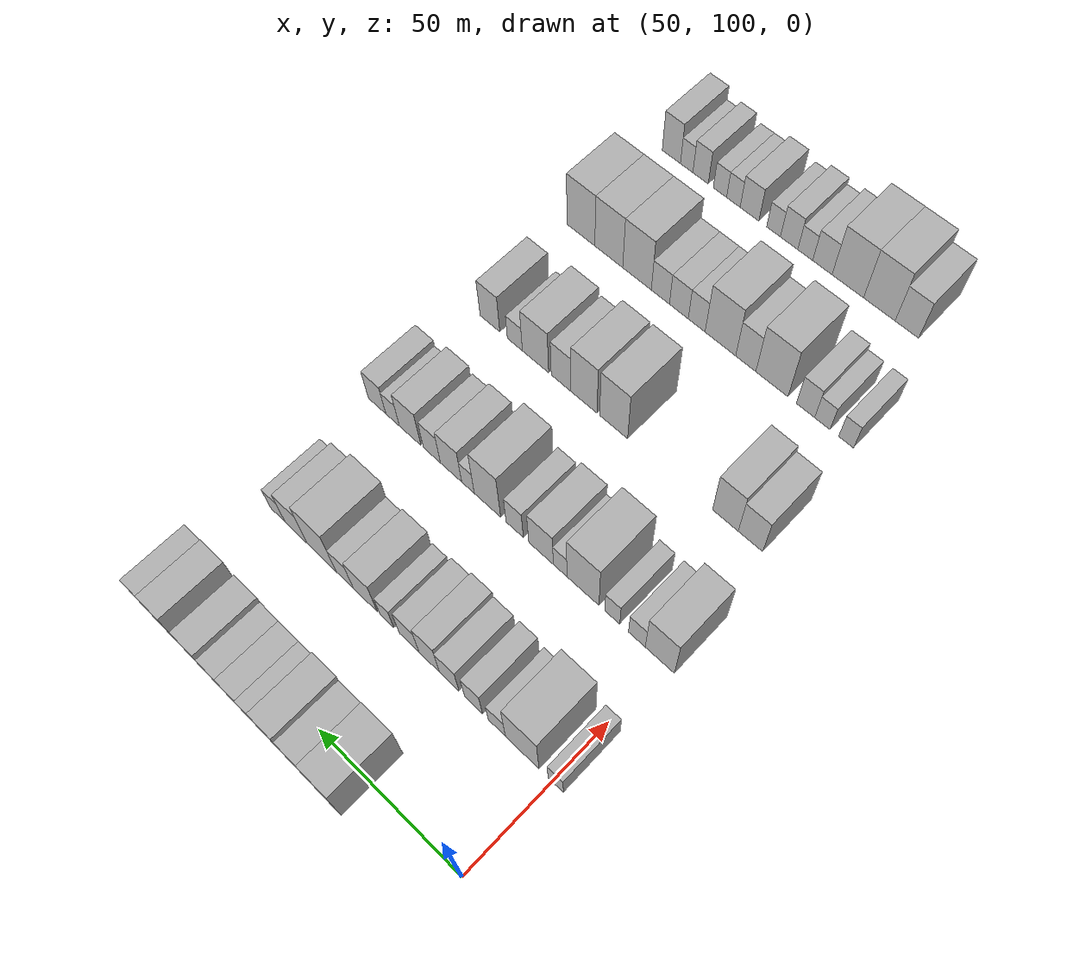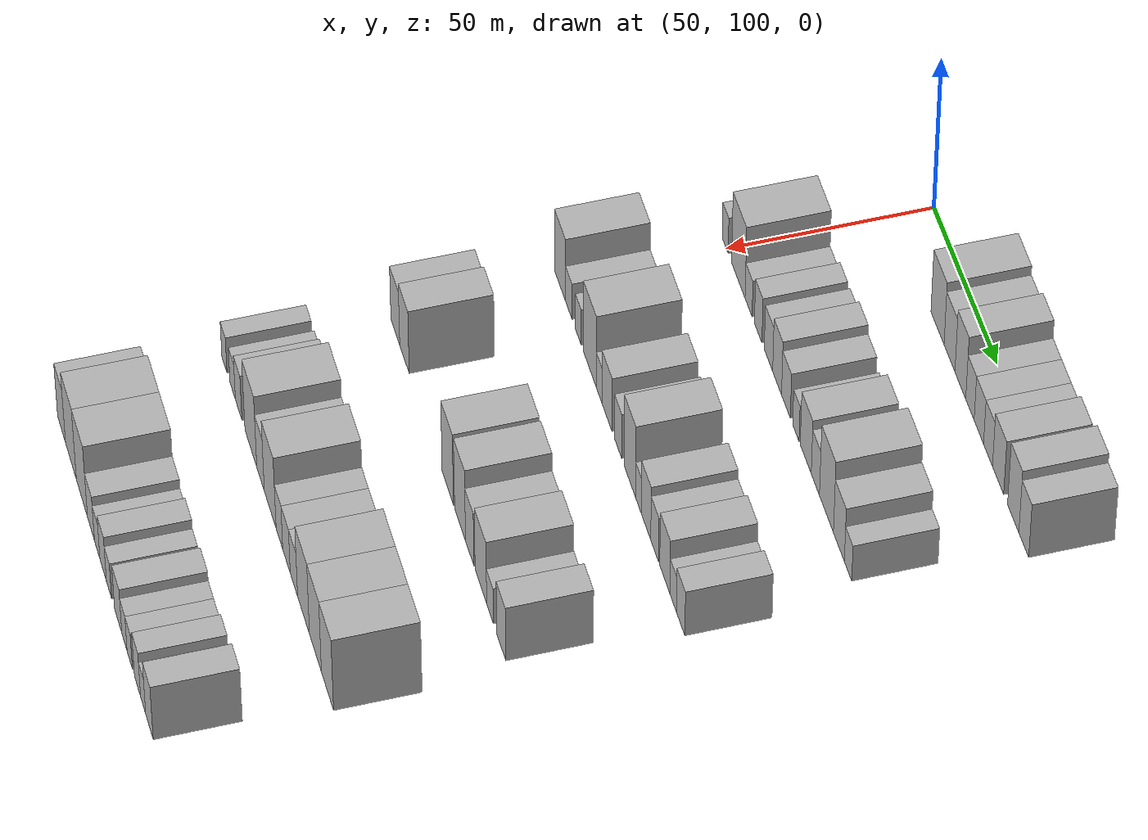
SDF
<sdf version="1.6">
 <world name="default">
  <model name="building_81">
   <static>1</static>
   <pose>50.0000 135.9728 0 0.000000 0.000000 0.000000</pose>
   <link name="link">
    <pose>0 0 10.50 0 0 0</pose>
    <collision name="collision"><geometry><box><size>20.0000 10.4667 21.0000</size></box></geometry></collision>
    <visual name="visual">
     <cast_shadows>0</cast_shadows>
     <geometry><box><size>20.0000 10.4667 21.0000</size></box></geometry>
     <material>
      <script>
       <uri>model://HANNAS_wall/materials/scripts</uri>
       <uri>model://HANNAS_wall/materials/textures</uri>
       <name>vrc/HANNAS_wall</name>
      </script>
     </material>
    </visual>
   </link>
  </model>
  <model name="building_82">
   <static>1</static>
   <pose>50.0000 145.5064 0 0.000000 0.000000 0.000000</pose>
   <link name="link">
    <pose>0 0 9.00 0 0 0</pose>
    <collision name="collision"><geometry><box><size>20.0000 8.6006 18.0000</size></box></geometry></collision>
    <visual name="visual">
     <cast_shadows>0</cast_shadows>
     <geometry><box><size>20.0000 8.6006 18.0000</size></box></geometry>
     <material>
      <script>
       <uri>model://HANNAS_wall/materials/scripts</uri>
       <uri>model://HANNAS_wall/materials/textures</uri>
       <name>vrc/HANNAS_wall</name>
      </script>
     </material>
    </visual>
   </link>
  </model>
  <model name="building_83">
   <static>1</static>
   <pose>50.0000 154.0730 0 0.000000 0.000000 0.000000</pose>
   <link name="link">
    <pose>0 0 10.50 0 0 0</pose>
    <collision name="collision"><geometry><box><size>20.0000 8.5325 21.0000</size></box></geometry></collision>
    <visual name="visual">
     <cast_shadows>0</cast_shadows>
     <geometry><box><size>20.0000 8.5325 21.0000</size></box></geometry>
     <material>
      <script>
       <uri>model://HANNAS_wall/materials/scripts</uri>
       <uri>model://HANNAS_wall/materials/textures</uri>
       <name>vrc/HANNAS_wall</name>
      </script>
     </material>
    </visual>
   </link>
  </model>
  <model name="building_84">
   <static>1</static>
   <pose>50.0000 161.6211 0 0.000000 0.000000 0.000000</pose>
   <link name="link">
    <pose>0 0 7.50 0 0 0</pose>
    <collision name="collision"><geometry><box><size>20.0000 6.5638 15.0000</size></box></geometry></collision>
    <visual name="visual">
     <cast_shadows>0</cast_shadows>
     <geometry><box><size>20.0000 6.5638 15.0000</size></box></geometry>
     <material>
      <script>
       <uri>model://HANNAS_wall/materials/scripts</uri>
       <uri>model://HANNAS_wall/materials/textures</uri>
       <name>vrc/HANNAS_wall</name>
      </script>
     </material>
    </visual>
   </link>
  </model>
  <model name="building_85">
   <static>1</static>
   <pose>50.0000 168.5790 0 0.000000 0.000000 0.000000</pose>
   <link name="link">
    <pose>0 0 7.50 0 0 0</pose>
    <collision name="collision"><geometry><box><size>20.0000 7.3518 15.0000</size></box></geometry></collision>
    <visual name="visual">
     <cast_shadows>0</cast_shadows>
     <geometry><box><size>20.0000 7.3518 15.0000</size></box></geometry>
     <material>
      <script>
       <uri>model://HANNAS_wall/materials/scripts</uri>
       <uri>model://HANNAS_wall/materials/textures</uri>
       <name>vrc/HANNAS_wall</name>
      </script>
     </material>
    </visual>
   </link>
  </model>
  <model name="building_86">
   <static>1</static>
   <pose>50.0000 175.7212 0 0.000000 0.000000 0.000000</pose>
   <link name="link">
    <pose>0 0 7.50 0 0 0</pose>
    <collision name="collision"><geometry><box><size>20.0000 6.9327 15.0000</size></box></geometry></collision>
    <visual name="visual">
     <cast_shadows>0</cast_shadows>
     <geometry><box><size>20.0000 6.9327 15.0000</size></box></geometry>
     <material>
      <script>
       <uri>model://HANNAS_wall/materials/scripts</uri>
       <uri>model://HANNAS_wall/materials/textures</uri>
       <name>vrc/HANNAS_wall</name>
      </script>
     </material>
    </visual>
   </link>
  </model>
  <model name="building_87">
   <static>1</static>
   <pose>50.0000 183.4900 0 0.000000 0.000000 0.000000</pose>
   <link name="link">
    <pose>0 0 9.00 0 0 0</pose>
    <collision name="collision"><geometry><box><size>20.0000 8.6049 18.0000</size></box></geometry></collision>
    <visual name="visual">
     <cast_shadows>0</cast_shadows>
     <geometry><box><size>20.0000 8.6049 18.0000</size></box></geometry>
     <material>
      <script>
       <uri>model://HANNAS_wall/materials/scripts</uri>
       <uri>model://HANNAS_wall/materials/textures</uri>
       <name>vrc/HANNAS_wall</name>
      </script>
     </material>
    </visual>
   </link>
  </model>
  <model name="building_88">
   <static>1</static>
   <pose>50.0000 195.1148 0 0.000000 0.000000 0.000000</pose>
   <link name="link">
    <pose>0 0 10.50 0 0 0</pose>
    <collision name="collision"><geometry><box><size>20.0000 8.6447 21.0000</size></box></geometry></collision>
    <visual name="visual">
     <cast_shadows>0</cast_shadows>
     <geometry><box><size>20.0000 8.6447 21.0000</size></box></geometry>
     <material>
      <script>
       <uri>model://HANNAS_wall/materials/scripts</uri>
       <uri>model://HANNAS_wall/materials/textures</uri>
       <name>vrc/HANNAS_wall</name>
      </script>
     </material>
    </visual>
   </link>
  </model>
  <model name="building_89">
   <static>1</static>
   <pose>50.0000 203.1701 0 0.000000 0.000000 0.000000</pose>
   <link name="link">
    <pose>0 0 9.00 0 0 0</pose>
    <collision name="collision"><geometry><box><size>20.0000 7.4660 18.0000</size></box></geometry></collision>
    <visual name="visual">
     <cast_shadows>0</cast_shadows>
     <geometry><box><size>20.0000 7.4660 18.0000</size></box></geometry>
     <material>
      <script>
       <uri>model://HANNAS_wall/materials/scripts</uri>
       <uri>model://HANNAS_wall/materials/textures</uri>
       <name>vrc/HANNAS_wall</name>
      </script>
     </material>
    </visual>
   </link>
  </model>
  <model name="building_217">
   <static>1</static>
   <pose>90.0000 98.8861 0 0.000000 0.000000 0.000000</pose>
   <link name="link">
    <pose>0 0 6.00 0 0 0</pose>
    <collision name="collision"><geometry><box><size>20.0000 5.0684 12.0000</size></box></geometry></collision>
    <visual name="visual">
     <cast_shadows>0</cast_shadows>
     <geometry><box><size>20.0000 5.0684 12.0000</size></box></geometry>
     <material>
      <script>
       <uri>model://HANNAS_wall/materials/scripts</uri>
       <uri>model://HANNAS_wall/materials/textures</uri>
       <name>vrc/HANNAS_wall</name>
      </script>
     </material>
    </visual>
   </link>
  </model>
  <model name="building_218">
   <static>1</static>
   <pose>90.0000 110.1168 0 0.000000 0.000000 0.000000</pose>
   <link name="link">
    <pose>0 0 12.00 0 0 0</pose>
    <collision name="collision"><geometry><box><size>20.0000 11.3928 24.0000</size></box></geometry></collision>
    <visual name="visual">
     <cast_shadows>0</cast_shadows>
     <geometry><box><size>20.0000 11.3928 24.0000</size></box></geometry>
     <material>
      <script>
       <uri>model://HANNAS_wall/materials/scripts</uri>
       <uri>model://HANNAS_wall/materials/textures</uri>
       <name>vrc/HANNAS_wall</name>
      </script>
     </material>
    </visual>
   </link>
  </model>
  <model name="building_219">
   <static>1</static>
   <pose>90.0000 118.7729 0 0.000000 0.000000 0.000000</pose>
   <link name="link">
    <pose>0 0 6.00 0 0 0</pose>
    <collision name="collision"><geometry><box><size>20.0000 5.9195 12.0000</size></box></geometry></collision>
    <visual name="visual">
     <cast_shadows>0</cast_shadows>
     <geometry><box><size>20.0000 5.9195 12.0000</size></box></geometry>
     <material>
      <script>
       <uri>model://HANNAS_wall/materials/scripts</uri>
       <uri>model://HANNAS_wall/materials/textures</uri>
       <name>vrc/HANNAS_wall</name>
      </script>
     </material>
    </visual>
   </link>
  </model>
  <model name="building_220">
   <static>1</static>
   <pose>90.0000 126.8644 0 0.000000 0.000000 0.000000</pose>
   <link name="link">
    <pose>0 0 7.50 0 0 0</pose>
    <collision name="collision"><geometry><box><size>20.0000 6.2635 15.0000</size></box></geometry></collision>
    <visual name="visual">
     <cast_shadows>0</cast_shadows>
     <geometry><box><size>20.0000 6.2635 15.0000</size></box></geometry>
     <material>
      <script>
       <uri>model://HANNAS_wall/materials/scripts</uri>
       <uri>model://HANNAS_wall/materials/textures</uri>
       <name>vrc/HANNAS_wall</name>
      </script>
     </material>
    </visual>
   </link>
  </model>
  <model name="building_221">
   <static>1</static>
   <pose>90.0000 135.4966 0 0.000000 0.000000 0.000000</pose>
   <link name="link">
    <pose>0 0 7.50 0 0 0</pose>
    <collision name="collision"><geometry><box><size>20.0000 7.0009 15.0000</size></box></geometry></collision>
    <visual name="visual">
     <cast_shadows>0</cast_shadows>
     <geometry><box><size>20.0000 7.0009 15.0000</size></box></geometry>
     <material>
      <script>
       <uri>model://HANNAS_wall/materials/scripts</uri>
       <uri>model://HANNAS_wall/materials/textures</uri>
       <name>vrc/HANNAS_wall</name>
      </script>
     </material>
    </visual>
   </link>
  </model>
  <model name="building_222">
   <static>1</static>
   <pose>90.0000 142.6741 0 0.000000 0.000000 0.000000</pose>
   <link name="link">
    <pose>0 0 9.00 0 0 0</pose>
    <collision name="collision"><geometry><box><size>20.0000 7.3541 18.0000</size></box></geometry></collision>
    <visual name="visual">
     <cast_shadows>0</cast_shadows>
     <geometry><box><size>20.0000 7.3541 18.0000</size></box></geometry>
     <material>
      <script>
       <uri>model://HANNAS_wall/materials/scripts</uri>
       <uri>model://HANNAS_wall/materials/textures</uri>
       <name>vrc/HANNAS_wall</name>
      </script>
     </material>
    </visual>
   </link>
  </model>
  <model name="building_223">
   <static>1</static>
   <pose>90.0000 149.9775 0 0.000000 0.000000 0.000000</pose>
   <link name="link">
    <pose>0 0 7.50 0 0 0</pose>
    <collision name="collision"><geometry><box><size>20.0000 7.2528 15.0000</size></box></geometry></collision>
    <visual name="visual">
     <cast_shadows>0</cast_shadows>
     <geometry><box><size>20.0000 7.2528 15.0000</size></box></geometry>
     <material>
      <script>
       <uri>model://HANNAS_wall/materials/scripts</uri>
       <uri>model://HANNAS_wall/materials/textures</uri>
       <name>vrc/HANNAS_wall</name>
      </script>
     </material>
    </visual>
   </link>
  </model>
  <model name="building_224">
   <static>1</static>
   <pose>90.0000 158.1889 0 0.000000 0.000000 0.000000</pose>
   <link name="link">
    <pose>0 0 6.00 0 0 0</pose>
    <collision name="collision"><geometry><box><size>20.0000 5.1699 12.0000</size></box></geometry></collision>
    <visual name="visual">
     <cast_shadows>0</cast_shadows>
     <geometry><box><size>20.0000 5.1699 12.0000</size></box></geometry>
     <material>
      <script>
       <uri>model://HANNAS_wall/materials/scripts</uri>
       <uri>model://HANNAS_wall/materials/textures</uri>
       <name>vrc/HANNAS_wall</name>
      </script>
     </material>
    </visual>
   </link>
  </model>
  <model name="building_225">
   <static>1</static>
   <pose>90.0000 166.2722 0 0.000000 0.000000 0.000000</pose>
   <link name="link">
    <pose>0 0 9.00 0 0 0</pose>
    <collision name="collision"><geometry><box><size>20.0000 8.9967 18.0000</size></box></geometry></collision>
    <visual name="visual">
     <cast_shadows>0</cast_shadows>
     <geometry><box><size>20.0000 8.9967 18.0000</size></box></geometry>
     <material>
      <script>
       <uri>model://HANNAS_wall/materials/scripts</uri>
       <uri>model://HANNAS_wall/materials/textures</uri>
       <name>vrc/HANNAS_wall</name>
      </script>
     </material>
    </visual>
   </link>
  </model>
  <model name="building_226">
   <static>1</static>
   <pose>90.0000 174.0977 0 0.000000 0.000000 0.000000</pose>
   <link name="link">
    <pose>0 0 7.50 0 0 0</pose>
    <collision name="collision"><geometry><box><size>20.0000 6.6544 15.0000</size></box></geometry></collision>
    <visual name="visual">
     <cast_shadows>0</cast_shadows>
     <geometry><box><size>20.0000 6.6544 15.0000</size></box></geometry>
     <material>
      <script>
       <uri>model://HANNAS_wall/materials/scripts</uri>
       <uri>model://HANNAS_wall/materials/textures</uri>
       <name>vrc/HANNAS_wall</name>
      </script>
     </material>
    </visual>
   </link>
  </model>
  <model name="building_227">
   <static>1</static>
   <pose>90.0000 183.0650 0 0.000000 0.000000 0.000000</pose>
   <link name="link">
    <pose>0 0 12.00 0 0 0</pose>
    <collision name="collision"><geometry><box><size>20.0000 11.2802 24.0000</size></box></geometry></collision>
    <visual name="visual">
     <cast_shadows>0</cast_shadows>
     <geometry><box><size>20.0000 11.2802 24.0000</size></box></geometry>
     <material>
      <script>
       <uri>model://HANNAS_wall/materials/scripts</uri>
       <uri>model://HANNAS_wall/materials/textures</uri>
       <name>vrc/HANNAS_wall</name>
      </script>
     </material>
    </visual>
   </link>
  </model>
  <model name="building_228">
   <static>1</static>
   <pose>90.0000 193.0836 0 0.000000 0.000000 0.000000</pose>
   <link name="link">
    <pose>0 0 9.00 0 0 0</pose>
    <collision name="collision"><geometry><box><size>20.0000 8.7570 18.0000</size></box></geometry></collision>
    <visual name="visual">
     <cast_shadows>0</cast_shadows>
     <geometry><box><size>20.0000 8.7570 18.0000</size></box></geometry>
     <material>
      <script>
       <uri>model://HANNAS_wall/materials/scripts</uri>
       <uri>model://HANNAS_wall/materials/textures</uri>
       <name>vrc/HANNAS_wall</name>
      </script>
     </material>
    </visual>
   </link>
  </model>
  <model name="building_229">
   <static>1</static>
   <pose>90.0000 200.3933 0 0.000000 0.000000 0.000000</pose>
   <link name="link">
    <pose>0 0 6.00 0 0 0</pose>
    <collision name="collision"><geometry><box><size>20.0000 5.8623 12.0000</size></box></geometry></collision>
    <visual name="visual">
     <cast_shadows>0</cast_shadows>
     <geometry><box><size>20.0000 5.8623 12.0000</size></box></geometry>
     <material>
      <script>
       <uri>model://HANNAS_wall/materials/scripts</uri>
       <uri>model://HANNAS_wall/materials/textures</uri>
       <name>vrc/HANNAS_wall</name>
      </script>
     </material>
    </visual>
   </link>
  </model>
  <model name="building_353">
   <static>1</static>
   <pose>130.0000 101.2650 0 0.000000 0.000000 0.000000</pose>
   <link name="link">
    <pose>0 0 10.50 0 0 0</pose>
    <collision name="collision"><geometry><box><size>20.0000 9.7929 21.0000</size></box></geometry></collision>
    <visual name="visual">
     <cast_shadows>0</cast_shadows>
     <geometry><box><size>20.0000 9.7929 21.0000</size></box></geometry>
     <material>
      <script>
       <uri>model://HANNAS_wall/materials/scripts</uri>
       <uri>model://HANNAS_wall/materials/textures</uri>
       <name>vrc/HANNAS_wall</name>
      </script>
     </material>
    </visual>
   </link>
  </model>
  <model name="building_354">
   <static>1</static>
   <pose>130.0000 109.0192 0 0.000000 0.000000 0.000000</pose>
   <link name="link">
    <pose>0 0 6.00 0 0 0</pose>
    <collision name="collision"><geometry><box><size>20.0000 5.7154 12.0000</size></box></geometry></collision>
    <visual name="visual">
     <cast_shadows>0</cast_shadows>
     <geometry><box><size>20.0000 5.7154 12.0000</size></box></geometry>
     <material>
      <script>
       <uri>model://HANNAS_wall/materials/scripts</uri>
       <uri>model://HANNAS_wall/materials/textures</uri>
       <name>vrc/HANNAS_wall</name>
      </script>
     </material>
    </visual>
   </link>
  </model>
  <model name="building_355">
   <static>1</static>
   <pose>130.0000 117.4664 0 0.000000 0.000000 0.000000</pose>
   <link name="link">
    <pose>0 0 6.00 0 0 0</pose>
    <collision name="collision"><geometry><box><size>20.0000 5.1791 12.0000</size></box></geometry></collision>
    <visual name="visual">
     <cast_shadows>0</cast_shadows>
     <geometry><box><size>20.0000 5.1791 12.0000</size></box></geometry>
     <material>
      <script>
       <uri>model://HANNAS_wall/materials/scripts</uri>
       <uri>model://HANNAS_wall/materials/textures</uri>
       <name>vrc/HANNAS_wall</name>
      </script>
     </material>
    </visual>
   </link>
  </model>
  <model name="building_356">
   <static>1</static>
   <pose>130.0000 127.6938 0 0.000000 0.000000 0.000000</pose>
   <link name="link">
    <pose>0 0 12.00 0 0 0</pose>
    <collision name="collision"><geometry><box><size>20.0000 11.2758 24.0000</size></box></geometry></collision>
    <visual name="visual">
     <cast_shadows>0</cast_shadows>
     <geometry><box><size>20.0000 11.2758 24.0000</size></box></geometry>
     <material>
      <script>
       <uri>model://HANNAS_wall/materials/scripts</uri>
       <uri>model://HANNAS_wall/materials/textures</uri>
       <name>vrc/HANNAS_wall</name>
      </script>
     </material>
    </visual>
   </link>
  </model>
  <model name="building_357">
   <static>1</static>
   <pose>130.0000 135.7639 0 0.000000 0.000000 0.000000</pose>
   <link name="link">
    <pose>0 0 6.00 0 0 0</pose>
    <collision name="collision"><geometry><box><size>20.0000 4.8643 12.0000</size></box></geometry></collision>
    <visual name="visual">
     <cast_shadows>0</cast_shadows>
     <geometry><box><size>20.0000 4.8643 12.0000</size></box></geometry>
     <material>
      <script>
       <uri>model://HANNAS_wall/materials/scripts</uri>
       <uri>model://HANNAS_wall/materials/textures</uri>
       <name>vrc/HANNAS_wall</name>
      </script>
     </material>
    </visual>
   </link>
  </model>
  <model name="building_358">
   <static>1</static>
   <pose>130.0000 142.6351 0 0.000000 0.000000 0.000000</pose>
   <link name="link">
    <pose>0 0 9.00 0 0 0</pose>
    <collision name="collision"><geometry><box><size>20.0000 8.8780 18.0000</size></box></geometry></collision>
    <visual name="visual">
     <cast_shadows>0</cast_shadows>
     <geometry><box><size>20.0000 8.8780 18.0000</size></box></geometry>
     <material>
      <script>
       <uri>model://HANNAS_wall/materials/scripts</uri>
       <uri>model://HANNAS_wall/materials/textures</uri>
       <name>vrc/HANNAS_wall</name>
      </script>
     </material>
    </visual>
   </link>
  </model>
  <model name="building_359">
   <static>1</static>
   <pose>130.0000 152.2548 0 0.000000 0.000000 0.000000</pose>
   <link name="link">
    <pose>0 0 7.50 0 0 0</pose>
    <collision name="collision"><geometry><box><size>20.0000 6.3614 15.0000</size></box></geometry></collision>
    <visual name="visual">
     <cast_shadows>0</cast_shadows>
     <geometry><box><size>20.0000 6.3614 15.0000</size></box></geometry>
     <material>
      <script>
       <uri>model://HANNAS_wall/materials/scripts</uri>
       <uri>model://HANNAS_wall/materials/textures</uri>
       <name>vrc/HANNAS_wall</name>
      </script>
     </material>
    </visual>
   </link>
  </model>
  <model name="building_360">
   <static>1</static>
   <pose>130.0000 162.3799 0 0.000000 0.000000 0.000000</pose>
   <link name="link">
    <pose>0 0 12.00 0 0 0</pose>
    <collision name="collision"><geometry><box><size>20.0000 9.8888 24.0000</size></box></geometry></collision>
    <visual name="visual">
     <cast_shadows>0</cast_shadows>
     <geometry><box><size>20.0000 9.8888 24.0000</size></box></geometry>
     <material>
      <script>
       <uri>model://HANNAS_wall/materials/scripts</uri>
       <uri>model://HANNAS_wall/materials/textures</uri>
       <name>vrc/HANNAS_wall</name>
      </script>
     </material>
    </visual>
   </link>
  </model>
  <model name="building_361">
   <static>1</static>
   <pose>130.0000 169.7253 0 0.000000 0.000000 0.000000</pose>
   <link name="link">
    <pose>0 0 6.00 0 0 0</pose>
    <collision name="collision"><geometry><box><size>20.0000 4.8021 12.0000</size></box></geometry></collision>
    <visual name="visual">
     <cast_shadows>0</cast_shadows>
     <geometry><box><size>20.0000 4.8021 12.0000</size></box></geometry>
     <material>
      <script>
       <uri>model://HANNAS_wall/materials/scripts</uri>
       <uri>model://HANNAS_wall/materials/textures</uri>
       <name>vrc/HANNAS_wall</name>
      </script>
     </material>
    </visual>
   </link>
  </model>
  <model name="building_362">
   <static>1</static>
   <pose>130.0000 176.2233 0 0.000000 0.000000 0.000000</pose>
   <link name="link">
    <pose>0 0 9.00 0 0 0</pose>
    <collision name="collision"><geometry><box><size>20.0000 8.1939 18.0000</size></box></geometry></collision>
    <visual name="visual">
     <cast_shadows>0</cast_shadows>
     <geometry><box><size>20.0000 8.1939 18.0000</size></box></geometry>
     <material>
      <script>
       <uri>model://HANNAS_wall/materials/scripts</uri>
       <uri>model://HANNAS_wall/materials/textures</uri>
       <name>vrc/HANNAS_wall</name>
      </script>
     </material>
    </visual>
   </link>
  </model>
  <model name="building_363">
   <static>1</static>
   <pose>130.0000 183.6289 0 0.000000 0.000000 0.000000</pose>
   <link name="link">
    <pose>0 0 7.50 0 0 0</pose>
    <collision name="collision"><geometry><box><size>20.0000 6.6175 15.0000</size></box></geometry></collision>
    <visual name="visual">
     <cast_shadows>0</cast_shadows>
     <geometry><box><size>20.0000 6.6175 15.0000</size></box></geometry>
     <material>
      <script>
       <uri>model://HANNAS_wall/materials/scripts</uri>
       <uri>model://HANNAS_wall/materials/textures</uri>
       <name>vrc/HANNAS_wall</name>
      </script>
     </material>
    </visual>
   </link>
  </model>
  <model name="building_364">
   <static>1</static>
   <pose>130.0000 192.2045 0 0.000000 0.000000 0.000000</pose>
   <link name="link">
    <pose>0 0 9.00 0 0 0</pose>
    <collision name="collision"><geometry><box><size>20.0000 8.5337 18.0000</size></box></geometry></collision>
    <visual name="visual">
     <cast_shadows>0</cast_shadows>
     <geometry><box><size>20.0000 8.5337 18.0000</size></box></geometry>
     <material>
      <script>
       <uri>model://HANNAS_wall/materials/scripts</uri>
       <uri>model://HANNAS_wall/materials/textures</uri>
       <name>vrc/HANNAS_wall</name>
      </script>
     </material>
    </visual>
   </link>
  </model>
  <model name="building_365">
   <static>1</static>
   <pose>130.0000 199.1846 0 0.000000 0.000000 0.000000</pose>
   <link name="link">
    <pose>0 0 6.00 0 0 0</pose>
    <collision name="collision"><geometry><box><size>20.0000 5.4264 12.0000</size></box></geometry></collision>
    <visual name="visual">
     <cast_shadows>0</cast_shadows>
     <geometry><box><size>20.0000 5.4264 12.0000</size></box></geometry>
     <material>
      <script>
       <uri>model://HANNAS_wall/materials/scripts</uri>
       <uri>model://HANNAS_wall/materials/textures</uri>
       <name>vrc/HANNAS_wall</name>
      </script>
     </material>
    </visual>
   </link>
  </model>
  <model name="building_366">
   <static>1</static>
   <pose>130.0000 205.4312 0 0.000000 0.000000 0.000000</pose>
   <link name="link">
    <pose>0 0 7.50 0 0 0</pose>
    <collision name="collision"><geometry><box><size>20.0000 7.0668 15.0000</size></box></geometry></collision>
    <visual name="visual">
     <cast_shadows>0</cast_shadows>
     <geometry><box><size>20.0000 7.0668 15.0000</size></box></geometry>
     <material>
      <script>
       <uri>model://HANNAS_wall/materials/scripts</uri>
       <uri>model://HANNAS_wall/materials/textures</uri>
       <name>vrc/HANNAS_wall</name>
      </script>
     </material>
    </visual>
   </link>
  </model>
  <model name="building_494">
   <static>1</static>
   <pose>170.0000 105.2760 0 0.000000 0.000000 0.000000</pose>
   <link name="link">
    <pose>0 0 9.00 0 0 0</pose>
    <collision name="collision"><geometry><box><size>20.0000 8.3285 18.0000</size></box></geometry></collision>
    <visual name="visual">
     <cast_shadows>0</cast_shadows>
     <geometry><box><size>20.0000 8.3285 18.0000</size></box></geometry>
     <material>
      <script>
       <uri>model://HANNAS_wall/materials/scripts</uri>
       <uri>model://HANNAS_wall/materials/textures</uri>
       <name>vrc/HANNAS_wall</name>
      </script>
     </material>
    </visual>
   </link>
  </model>
  <model name="building_495">
   <static>1</static>
   <pose>170.0000 113.8774 0 0.000000 0.000000 0.000000</pose>
   <link name="link">
    <pose>0 0 10.50 0 0 0</pose>
    <collision name="collision"><geometry><box><size>20.0000 8.8741 21.0000</size></box></geometry></collision>
    <visual name="visual">
     <cast_shadows>0</cast_shadows>
     <geometry><box><size>20.0000 8.8741 21.0000</size></box></geometry>
     <material>
      <script>
       <uri>model://HANNAS_wall/materials/scripts</uri>
       <uri>model://HANNAS_wall/materials/textures</uri>
       <name>vrc/HANNAS_wall</name>
      </script>
     </material>
    </visual>
   </link>
  </model>
  <model name="building_496">
   <static>1</static>
   <pose>170.0000 153.9005 0 0.000000 0.000000 0.000000</pose>
   <link name="link">
    <pose>0 0 12.00 0 0 0</pose>
    <collision name="collision"><geometry><box><size>20.0000 10.3907 24.0000</size></box></geometry></collision>
    <visual name="visual">
     <cast_shadows>0</cast_shadows>
     <geometry><box><size>20.0000 10.3907 24.0000</size></box></geometry>
     <material>
      <script>
       <uri>model://HANNAS_wall/materials/scripts</uri>
       <uri>model://HANNAS_wall/materials/textures</uri>
       <name>vrc/HANNAS_wall</name>
      </script>
     </material>
    </visual>
   </link>
  </model>
  <model name="building_497">
   <static>1</static>
   <pose>170.0000 165.0161 0 0.000000 0.000000 0.000000</pose>
   <link name="link">
    <pose>0 0 12.00 0 0 0</pose>
    <collision name="collision"><geometry><box><size>20.0000 9.8406 24.0000</size></box></geometry></collision>
    <visual name="visual">
     <cast_shadows>0</cast_shadows>
     <geometry><box><size>20.0000 9.8406 24.0000</size></box></geometry>
     <material>
      <script>
       <uri>model://HANNAS_wall/materials/scripts</uri>
       <uri>model://HANNAS_wall/materials/textures</uri>
       <name>vrc/HANNAS_wall</name>
      </script>
     </material>
    </visual>
   </link>
  </model>
  <model name="building_498">
   <static>1</static>
   <pose>170.0000 173.7234 0 0.000000 0.000000 0.000000</pose>
   <link name="link">
    <pose>0 0 9.00 0 0 0</pose>
    <collision name="collision"><geometry><box><size>20.0000 7.5738 18.0000</size></box></geometry></collision>
    <visual name="visual">
     <cast_shadows>0</cast_shadows>
     <geometry><box><size>20.0000 7.5738 18.0000</size></box></geometry>
     <material>
      <script>
       <uri>model://HANNAS_wall/materials/scripts</uri>
       <uri>model://HANNAS_wall/materials/textures</uri>
       <name>vrc/HANNAS_wall</name>
      </script>
     </material>
    </visual>
   </link>
  </model>
  <model name="building_499">
   <static>1</static>
   <pose>170.0000 183.6566 0 0.000000 0.000000 0.000000</pose>
   <link name="link">
    <pose>0 0 10.50 0 0 0</pose>
    <collision name="collision"><geometry><box><size>20.0000 10.2927 21.0000</size></box></geometry></collision>
    <visual name="visual">
     <cast_shadows>0</cast_shadows>
     <geometry><box><size>20.0000 10.2927 21.0000</size></box></geometry>
     <material>
      <script>
       <uri>model://HANNAS_wall/materials/scripts</uri>
       <uri>model://HANNAS_wall/materials/textures</uri>
       <name>vrc/HANNAS_wall</name>
      </script>
     </material>
    </visual>
   </link>
  </model>
  <model name="building_500">
   <static>1</static>
   <pose>170.0000 191.7730 0 0.000000 0.000000 0.000000</pose>
   <link name="link">
    <pose>0 0 6.00 0 0 0</pose>
    <collision name="collision"><geometry><box><size>20.0000 5.9402 12.0000</size></box></geometry></collision>
    <visual name="visual">
     <cast_shadows>0</cast_shadows>
     <geometry><box><size>20.0000 5.9402 12.0000</size></box></geometry>
     <material>
      <script>
       <uri>model://HANNAS_wall/materials/scripts</uri>
       <uri>model://HANNAS_wall/materials/textures</uri>
       <name>vrc/HANNAS_wall</name>
      </script>
     </material>
    </visual>
   </link>
  </model>
  <model name="building_501">
   <static>1</static>
   <pose>170.0000 201.7171 0 0.000000 0.000000 0.000000</pose>
   <link name="link">
    <pose>0 0 9.00 0 0 0</pose>
    <collision name="collision"><geometry><box><size>20.0000 7.9480 18.0000</size></box></geometry></collision>
    <visual name="visual">
     <cast_shadows>0</cast_shadows>
     <geometry><box><size>20.0000 7.9480 18.0000</size></box></geometry>
     <material>
      <script>
       <uri>model://HANNAS_wall/materials/scripts</uri>
       <uri>model://HANNAS_wall/materials/textures</uri>
       <name>vrc/HANNAS_wall</name>
      </script>
     </material>
    </visual>
   </link>
  </model>
  <model name="building_630">
   <static>1</static>
   <pose>210.0000 104.9860 0 0.000000 0.000000 0.000000</pose>
   <link name="link">
    <pose>0 0 6.00 0 0 0</pose>
    <collision name="collision"><geometry><box><size>20.0000 5.1013 12.0000</size></box></geometry></collision>
    <visual name="visual">
     <cast_shadows>0</cast_shadows>
     <geometry><box><size>20.0000 5.1013 12.0000</size></box></geometry>
     <material>
      <script>
       <uri>model://HANNAS_wall/materials/scripts</uri>
       <uri>model://HANNAS_wall/materials/textures</uri>
       <name>vrc/HANNAS_wall</name>
      </script>
     </material>
    </visual>
   </link>
  </model>
  <model name="building_631">
   <static>1</static>
   <pose>210.0000 113.2054 0 0.000000 0.000000 0.000000</pose>
   <link name="link">
    <pose>0 0 6.00 0 0 0</pose>
    <collision name="collision"><geometry><box><size>20.0000 5.3376 12.0000</size></box></geometry></collision>
    <visual name="visual">
     <cast_shadows>0</cast_shadows>
     <geometry><box><size>20.0000 5.3376 12.0000</size></box></geometry>
     <material>
      <script>
       <uri>model://HANNAS_wall/materials/scripts</uri>
       <uri>model://HANNAS_wall/materials/textures</uri>
       <name>vrc/HANNAS_wall</name>
      </script>
     </material>
    </visual>
   </link>
  </model>
  <model name="building_632">
   <static>1</static>
   <pose>210.0000 119.0778 0 0.000000 0.000000 0.000000</pose>
   <link name="link">
    <pose>0 0 7.50 0 0 0</pose>
    <collision name="collision"><geometry><box><size>20.0000 6.4070 15.0000</size></box></geometry></collision>
    <visual name="visual">
     <cast_shadows>0</cast_shadows>
     <geometry><box><size>20.0000 6.4070 15.0000</size></box></geometry>
     <material>
      <script>
       <uri>model://HANNAS_wall/materials/scripts</uri>
       <uri>model://HANNAS_wall/materials/textures</uri>
       <name>vrc/HANNAS_wall</name>
      </script>
     </material>
    </visual>
   </link>
  </model>
  <model name="building_633">
   <static>1</static>
   <pose>210.0000 131.0586 0 0.000000 0.000000 0.000000</pose>
   <link name="link">
    <pose>0 0 12.00 0 0 0</pose>
    <collision name="collision"><geometry><box><size>20.0000 11.5546 24.0000</size></box></geometry></collision>
    <visual name="visual">
     <cast_shadows>0</cast_shadows>
     <geometry><box><size>20.0000 11.5546 24.0000</size></box></geometry>
     <material>
      <script>
       <uri>model://HANNAS_wall/materials/scripts</uri>
       <uri>model://HANNAS_wall/materials/textures</uri>
       <name>vrc/HANNAS_wall</name>
      </script>
     </material>
    </visual>
   </link>
  </model>
  <model name="building_634">
   <static>1</static>
   <pose>210.0000 140.5058 0 0.000000 0.000000 0.000000</pose>
   <link name="link">
    <pose>0 0 9.00 0 0 0</pose>
    <collision name="collision"><geometry><box><size>20.0000 7.3399 18.0000</size></box></geometry></collision>
    <visual name="visual">
     <cast_shadows>0</cast_shadows>
     <geometry><box><size>20.0000 7.3399 18.0000</size></box></geometry>
     <material>
      <script>
       <uri>model://HANNAS_wall/materials/scripts</uri>
       <uri>model://HANNAS_wall/materials/textures</uri>
       <name>vrc/HANNAS_wall</name>
      </script>
     </material>
    </visual>
   </link>
  </model>
  <model name="building_635">
   <static>1</static>
   <pose>210.0000 149.8520 0 0.000000 0.000000 0.000000</pose>
   <link name="link">
    <pose>0 0 12.00 0 0 0</pose>
    <collision name="collision"><geometry><box><size>20.0000 11.3525 24.0000</size></box></geometry></collision>
    <visual name="visual">
     <cast_shadows>0</cast_shadows>
     <geometry><box><size>20.0000 11.3525 24.0000</size></box></geometry>
     <material>
      <script>
       <uri>model://HANNAS_wall/materials/scripts</uri>
       <uri>model://HANNAS_wall/materials/textures</uri>
       <name>vrc/HANNAS_wall</name>
      </script>
     </material>
    </visual>
   </link>
  </model>
  <model name="building_636">
   <static>1</static>
   <pose>210.0000 158.7022 0 0.000000 0.000000 0.000000</pose>
   <link name="link">
    <pose>0 0 7.50 0 0 0</pose>
    <collision name="collision"><geometry><box><size>20.0000 6.3479 15.0000</size></box></geometry></collision>
    <visual name="visual">
     <cast_shadows>0</cast_shadows>
     <geometry><box><size>20.0000 6.3479 15.0000</size></box></geometry>
     <material>
      <script>
       <uri>model://HANNAS_wall/materials/scripts</uri>
       <uri>model://HANNAS_wall/materials/textures</uri>
       <name>vrc/HANNAS_wall</name>
      </script>
     </material>
    </visual>
   </link>
  </model>
  <model name="building_637">
   <static>1</static>
   <pose>210.0000 165.4550 0 0.000000 0.000000 0.000000</pose>
   <link name="link">
    <pose>0 0 7.50 0 0 0</pose>
    <collision name="collision"><geometry><box><size>20.0000 7.1576 15.0000</size></box></geometry></collision>
    <visual name="visual">
     <cast_shadows>0</cast_shadows>
     <geometry><box><size>20.0000 7.1576 15.0000</size></box></geometry>
     <material>
      <script>
       <uri>model://HANNAS_wall/materials/scripts</uri>
       <uri>model://HANNAS_wall/materials/textures</uri>
       <name>vrc/HANNAS_wall</name>
      </script>
     </material>
    </visual>
   </link>
  </model>
  <model name="building_638">
   <static>1</static>
   <pose>210.0000 172.5271 0 0.000000 0.000000 0.000000</pose>
   <link name="link">
    <pose>0 0 7.50 0 0 0</pose>
    <collision name="collision"><geometry><box><size>20.0000 6.9867 15.0000</size></box></geometry></collision>
    <visual name="visual">
     <cast_shadows>0</cast_shadows>
     <geometry><box><size>20.0000 6.9867 15.0000</size></box></geometry>
     <material>
      <script>
       <uri>model://HANNAS_wall/materials/scripts</uri>
       <uri>model://HANNAS_wall/materials/textures</uri>
       <name>vrc/HANNAS_wall</name>
      </script>
     </material>
    </visual>
   </link>
  </model>
  <model name="building_639">
   <static>1</static>
   <pose>210.0000 181.6075 0 0.000000 0.000000 0.000000</pose>
   <link name="link">
    <pose>0 0 12.00 0 0 0</pose>
    <collision name="collision"><geometry><box><size>20.0000 11.1740 24.0000</size></box></geometry></collision>
    <visual name="visual">
     <cast_shadows>0</cast_shadows>
     <geometry><box><size>20.0000 11.1740 24.0000</size></box></geometry>
     <material>
      <script>
       <uri>model://HANNAS_wall/materials/scripts</uri>
       <uri>model://HANNAS_wall/materials/textures</uri>
       <name>vrc/HANNAS_wall</name>
      </script>
     </material>
    </visual>
   </link>
  </model>
  <model name="building_640">
   <static>1</static>
   <pose>210.0000 192.7639 0 0.000000 0.000000 0.000000</pose>
   <link name="link">
    <pose>0 0 12.00 0 0 0</pose>
    <collision name="collision"><geometry><box><size>20.0000 11.1390 24.0000</size></box></geometry></collision>
    <visual name="visual">
     <cast_shadows>0</cast_shadows>
     <geometry><box><size>20.0000 11.1390 24.0000</size></box></geometry>
     <material>
      <script>
       <uri>model://HANNAS_wall/materials/scripts</uri>
       <uri>model://HANNAS_wall/materials/textures</uri>
       <name>vrc/HANNAS_wall</name>
      </script>
     </material>
    </visual>
   </link>
  </model>
  <model name="building_641">
   <static>1</static>
   <pose>210.0000 203.9738 0 0.000000 0.000000 0.000000</pose>
   <link name="link">
    <pose>0 0 12.00 0 0 0</pose>
    <collision name="collision"><geometry><box><size>20.0000 11.2808 24.0000</size></box></geometry></collision>
    <visual name="visual">
     <cast_shadows>0</cast_shadows>
     <geometry><box><size>20.0000 11.2808 24.0000</size></box></geometry>
     <material>
      <script>
       <uri>model://HANNAS_wall/materials/scripts</uri>
       <uri>model://HANNAS_wall/materials/textures</uri>
       <name>vrc/HANNAS_wall</name>
      </script>
     </material>
    </visual>
   </link>
  </model>
  <model name="building_765">
   <static>1</static>
   <pose>250.0000 114.4946 0 0.000000 0.000000 0.000000</pose>
   <link name="link">
    <pose>0 0 9.00 0 0 0</pose>
    <collision name="collision"><geometry><box><size>20.0000 8.2737 18.0000</size></box></geometry></collision>
    <visual name="visual">
     <cast_shadows>0</cast_shadows>
     <geometry><box><size>20.0000 8.2737 18.0000</size></box></geometry>
     <material>
      <script>
       <uri>model://HANNAS_wall/materials/scripts</uri>
       <uri>model://HANNAS_wall/materials/textures</uri>
       <name>vrc/HANNAS_wall</name>
      </script>
     </material>
    </visual>
   </link>
  </model>
  <model name="building_766">
   <static>1</static>
   <pose>250.0000 124.2887 0 0.000000 0.000000 0.000000</pose>
   <link name="link">
    <pose>0 0 12.00 0 0 0</pose>
    <collision name="collision"><geometry><box><size>20.0000 11.3145 24.0000</size></box></geometry></collision>
    <visual name="visual">
     <cast_shadows>0</cast_shadows>
     <geometry><box><size>20.0000 11.3145 24.0000</size></box></geometry>
     <material>
      <script>
       <uri>model://HANNAS_wall/materials/scripts</uri>
       <uri>model://HANNAS_wall/materials/textures</uri>
       <name>vrc/HANNAS_wall</name>
      </script>
     </material>
    </visual>
   </link>
  </model>
  <model name="building_767">
   <static>1</static>
   <pose>250.0000 135.6920 0 0.000000 0.000000 0.000000</pose>
   <link name="link">
    <pose>0 0 12.00 0 0 0</pose>
    <collision name="collision"><geometry><box><size>20.0000 11.4922 24.0000</size></box></geometry></collision>
    <visual name="visual">
     <cast_shadows>0</cast_shadows>
     <geometry><box><size>20.0000 11.4922 24.0000</size></box></geometry>
     <material>
      <script>
       <uri>model://HANNAS_wall/materials/scripts</uri>
       <uri>model://HANNAS_wall/materials/textures</uri>
       <name>vrc/HANNAS_wall</name>
      </script>
     </material>
    </visual>
   </link>
  </model>
  <model name="building_768">
   <static>1</static>
   <pose>250.0000 145.0292 0 0.000000 0.000000 0.000000</pose>
   <link name="link">
    <pose>0 0 7.50 0 0 0</pose>
    <collision name="collision"><geometry><box><size>20.0000 7.1821 15.0000</size></box></geometry></collision>
    <visual name="visual">
     <cast_shadows>0</cast_shadows>
     <geometry><box><size>20.0000 7.1821 15.0000</size></box></geometry>
     <material>
      <script>
       <uri>model://HANNAS_wall/materials/scripts</uri>
       <uri>model://HANNAS_wall/materials/textures</uri>
       <name>vrc/HANNAS_wall</name>
      </script>
     </material>
    </visual>
   </link>
  </model>
  <model name="building_769">
   <static>1</static>
   <pose>250.0000 151.4142 0 0.000000 0.000000 0.000000</pose>
   <link name="link">
    <pose>0 0 6.00 0 0 0</pose>
    <collision name="collision"><geometry><box><size>20.0000 5.5879 12.0000</size></box></geometry></collision>
    <visual name="visual">
     <cast_shadows>0</cast_shadows>
     <geometry><box><size>20.0000 5.5879 12.0000</size></box></geometry>
     <material>
      <script>
       <uri>model://HANNAS_wall/materials/scripts</uri>
       <uri>model://HANNAS_wall/materials/textures</uri>
       <name>vrc/HANNAS_wall</name>
      </script>
     </material>
    </visual>
   </link>
  </model>
  <model name="building_770">
   <static>1</static>
   <pose>250.0000 157.4876 0 0.000000 0.000000 0.000000</pose>
   <link name="link">
    <pose>0 0 7.50 0 0 0</pose>
    <collision name="collision"><geometry><box><size>20.0000 6.5589 15.0000</size></box></geometry></collision>
    <visual name="visual">
     <cast_shadows>0</cast_shadows>
     <geometry><box><size>20.0000 6.5589 15.0000</size></box></geometry>
     <material>
      <script>
       <uri>model://HANNAS_wall/materials/scripts</uri>
       <uri>model://HANNAS_wall/materials/textures</uri>
       <name>vrc/HANNAS_wall</name>
      </script>
     </material>
    </visual>
   </link>
  </model>
  <model name="building_771">
   <static>1</static>
   <pose>250.0000 163.4024 0 0.000000 0.000000 0.000000</pose>
   <link name="link">
    <pose>0 0 6.00 0 0 0</pose>
    <collision name="collision"><geometry><box><size>20.0000 5.2707 12.0000</size></box></geometry></collision>
    <visual name="visual">
     <cast_shadows>0</cast_shadows>
     <geometry><box><size>20.0000 5.2707 12.0000</size></box></geometry>
     <material>
      <script>
       <uri>model://HANNAS_wall/materials/scripts</uri>
       <uri>model://HANNAS_wall/materials/textures</uri>
       <name>vrc/HANNAS_wall</name>
      </script>
     </material>
    </visual>
   </link>
  </model>
  <model name="building_772">
   <static>1</static>
   <pose>250.0000 172.6715 0 0.000000 0.000000 0.000000</pose>
   <link name="link">
    <pose>0 0 7.50 0 0 0</pose>
    <collision name="collision"><geometry><box><size>20.0000 7.2675 15.0000</size></box></geometry></collision>
    <visual name="visual">
     <cast_shadows>0</cast_shadows>
     <geometry><box><size>20.0000 7.2675 15.0000</size></box></geometry>
     <material>
      <script>
       <uri>model://HANNAS_wall/materials/scripts</uri>
       <uri>model://HANNAS_wall/materials/textures</uri>
       <name>vrc/HANNAS_wall</name>
      </script>
     </material>
    </visual>
   </link>
  </model>
  <model name="building_773">
   <static>1</static>
   <pose>250.0000 178.9498 0 0.000000 0.000000 0.000000</pose>
   <link name="link">
    <pose>0 0 6.00 0 0 0</pose>
    <collision name="collision"><geometry><box><size>20.0000 5.2892 12.0000</size></box></geometry></collision>
    <visual name="visual">
     <cast_shadows>0</cast_shadows>
     <geometry><box><size>20.0000 5.2892 12.0000</size></box></geometry>
     <material>
      <script>
       <uri>model://HANNAS_wall/materials/scripts</uri>
       <uri>model://HANNAS_wall/materials/textures</uri>
       <name>vrc/HANNAS_wall</name>
      </script>
     </material>
    </visual>
   </link>
  </model>
  <model name="building_774">
   <static>1</static>
   <pose>250.0000 184.2260 0 0.000000 0.000000 0.000000</pose>
   <link name="link">
    <pose>0 0 6.00 0 0 0</pose>
    <collision name="collision"><geometry><box><size>20.0000 5.2632 12.0000</size></box></geometry></collision>
    <visual name="visual">
     <cast_shadows>0</cast_shadows>
     <geometry><box><size>20.0000 5.2632 12.0000</size></box></geometry>
     <material>
      <script>
       <uri>model://HANNAS_wall/materials/scripts</uri>
       <uri>model://HANNAS_wall/materials/textures</uri>
       <name>vrc/HANNAS_wall</name>
      </script>
     </material>
    </visual>
   </link>
  </model>
  <model name="building_775">
   <static>1</static>
   <pose>250.0000 191.9416 0 0.000000 0.000000 0.000000</pose>
   <link name="link">
    <pose>0 0 7.50 0 0 0</pose>
    <collision name="collision"><geometry><box><size>20.0000 6.1680 15.0000</size></box></geometry></collision>
    <visual name="visual">
     <cast_shadows>0</cast_shadows>
     <geometry><box><size>20.0000 6.1680 15.0000</size></box></geometry>
     <material>
      <script>
       <uri>model://HANNAS_wall/materials/scripts</uri>
       <uri>model://HANNAS_wall/materials/textures</uri>
       <name>vrc/HANNAS_wall</name>
      </script>
     </material>
    </visual>
   </link>
  </model>
  <model name="building_776">
   <static>1</static>
   <pose>250.0000 197.5378 0 0.000000 0.000000 0.000000</pose>
   <link name="link">
    <pose>0 0 6.00 0 0 0</pose>
    <collision name="collision"><geometry><box><size>20.0000 5.0243 12.0000</size></box></geometry></collision>
    <visual name="visual">
     <cast_shadows>0</cast_shadows>
     <geometry><box><size>20.0000 5.0243 12.0000</size></box></geometry>
     <material>
      <script>
       <uri>model://HANNAS_wall/materials/scripts</uri>
       <uri>model://HANNAS_wall/materials/textures</uri>
       <name>vrc/HANNAS_wall</name>
      </script>
     </material>
    </visual>
   </link>
  </model>
  <model name="building_777">
   <static>1</static>
   <pose>250.0000 203.7462 0 0.000000 0.000000 0.000000</pose>
   <link name="link">
    <pose>0 0 9.00 0 0 0</pose>
    <collision name="collision"><geometry><box><size>20.0000 7.3926 18.0000</size></box></geometry></collision>
    <visual name="visual">
     <cast_shadows>0</cast_shadows>
     <geometry><box><size>20.0000 7.3926 18.0000</size></box></geometry>
     <material>
      <script>
       <uri>model://HANNAS_wall/materials/scripts</uri>
       <uri>model://HANNAS_wall/materials/textures</uri>
       <name>vrc/HANNAS_wall</name>
      </script>
     </material>
    </visual>
   </link>
  </model>
 </world>
</sdf>
